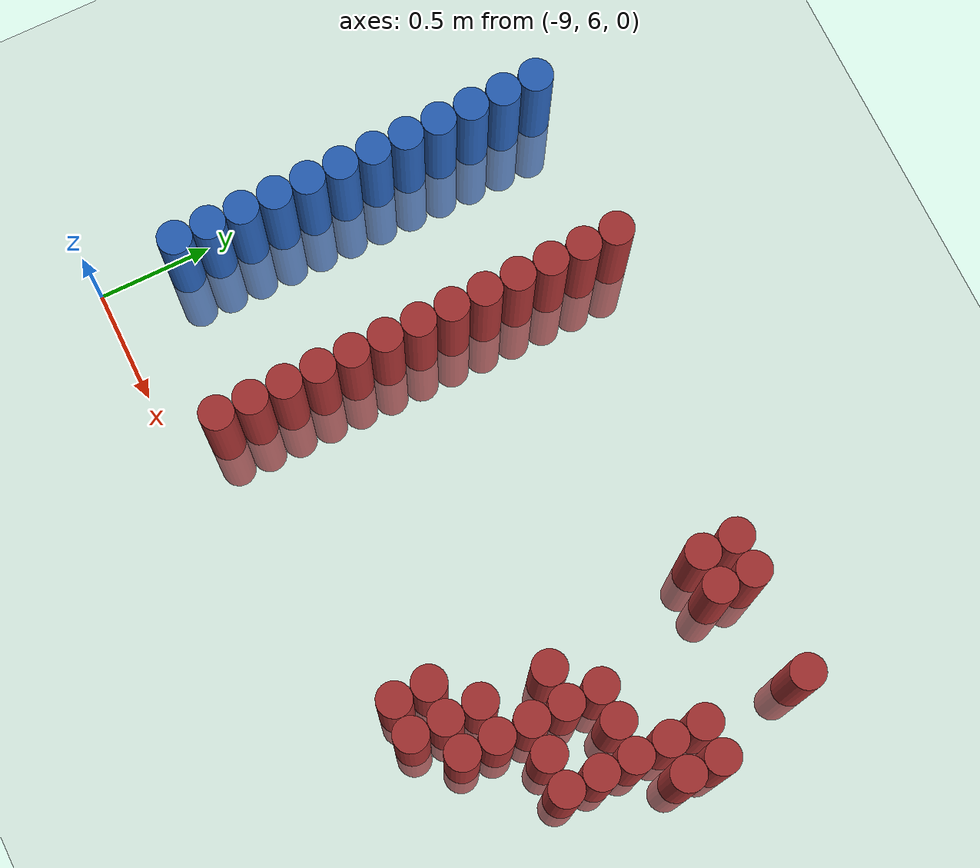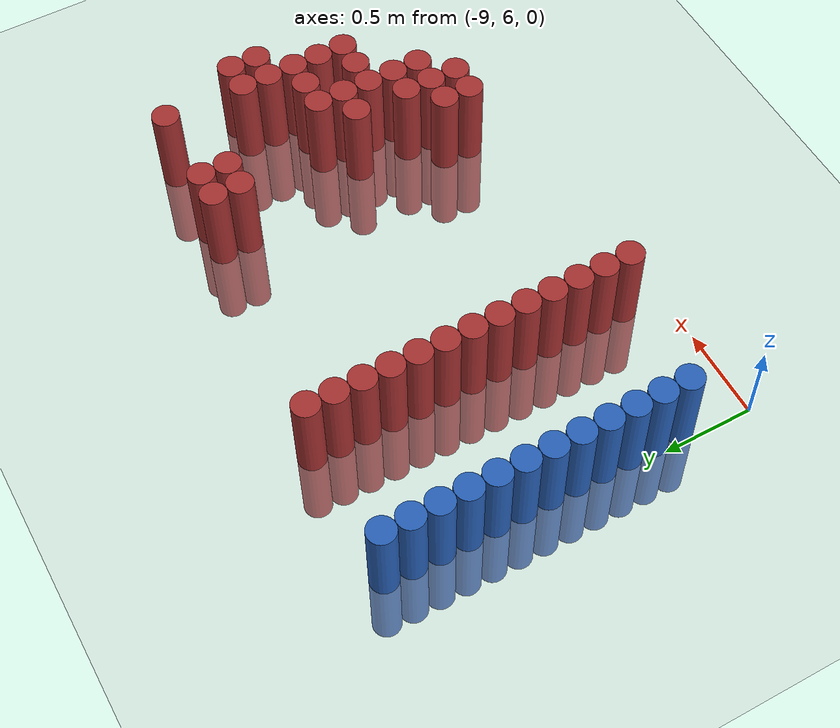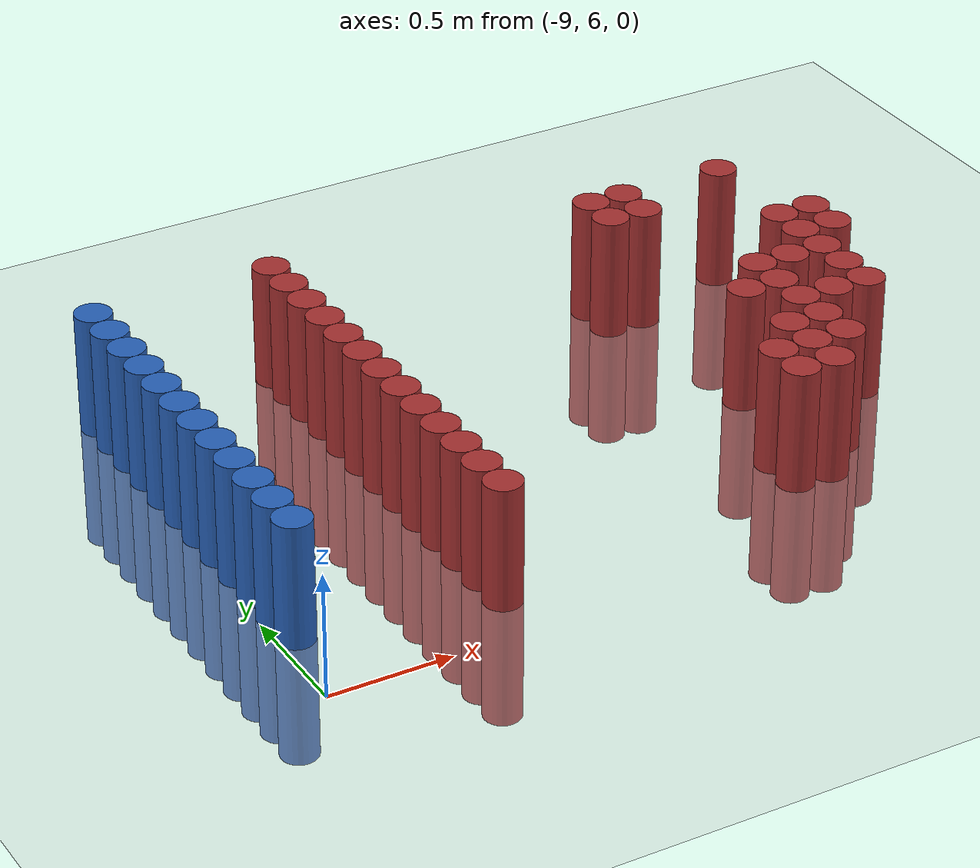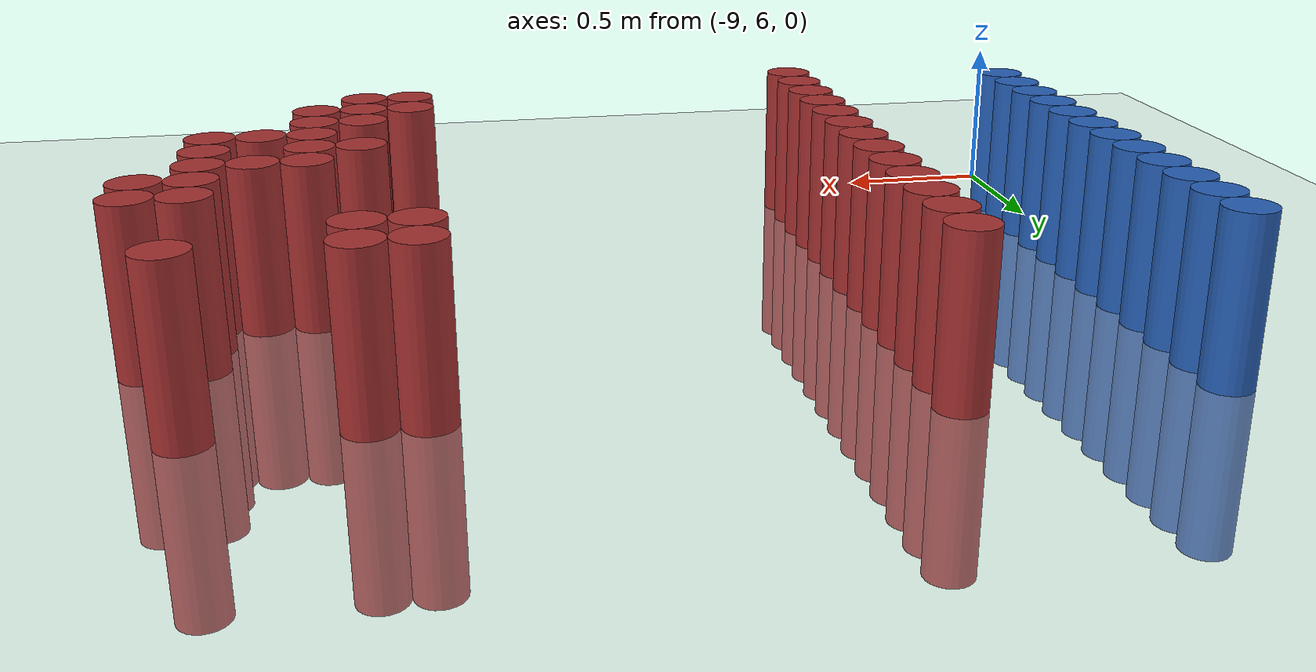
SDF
<sdf version="1.6">
 <world name="default">
  <model name="ground_plane">
   <static>1</static>
   <link name="link">
    <collision name="collision">
     <geometry><plane><normal>0 0 1</normal><size>100 100</size></plane></geometry>
     <surface><friction><ode><mu>100</mu><mu2>50</mu2></ode></friction></surface>
    </collision>
    <visual name="visual">
     <cast_shadows>0</cast_shadows>
     <geometry><plane><normal>0 0 1</normal><size>100 100</size></plane></geometry>
     <material>
      <script><uri>file://media/materials/scripts/gazebo.material</uri><name>Gazebo/Grey</name></script>
     </material>
    </visual>
   </link>
  </model>
  <model name="unit_cylinder_133">
   <static>1</static>
   <pose>-8.925000 6.375000 0.000000 0.000000 0.000000 0.000000</pose>
   <link name="link">
    <inertial>
     <mass>1</mass>
     <inertia><ixx>0.145833</ixx><ixy>0</ixy><ixz>0</ixz><iyy>0.145833</iyy><iyz>0</iyz><izz>0.125</izz></inertia>
    </inertial>
    <collision name="collision">
     <geometry><cylinder><radius>0.075000</radius><length>1</length></cylinder></geometry>
    </collision>
    <visual name="visual">
     <geometry><cylinder><radius>0.075000</radius><length>1</length></cylinder></geometry>
     <material>
      <ambient>0.152000 0.379000 0.720000 1</ambient>
      <diffuse>0.152000 0.379000 0.720000 1</diffuse>
     </material>
     <material>
      <script><name>Gazebo/Grey</name><uri>file://media/materials/scripts/gazebo.material</uri></script>
     </material>
    </visual>
   </link>
  </model>
  <model name="unit_cylinder_134">
   <static>1</static>
   <pose>-8.925000 6.525000 0.000000 0.000000 0.000000 0.000000</pose>
   <link name="link">
    <inertial>
     <mass>1</mass>
     <inertia><ixx>0.145833</ixx><ixy>0</ixy><ixz>0</ixz><iyy>0.145833</iyy><iyz>0</iyz><izz>0.125</izz></inertia>
    </inertial>
    <collision name="collision">
     <geometry><cylinder><radius>0.075000</radius><length>1</length></cylinder></geometry>
    </collision>
    <visual name="visual">
     <geometry><cylinder><radius>0.075000</radius><length>1</length></cylinder></geometry>
     <material>
      <ambient>0.152000 0.379000 0.720000 1</ambient>
      <diffuse>0.152000 0.379000 0.720000 1</diffuse>
     </material>
     <material>
      <script><name>Gazebo/Grey</name><uri>file://media/materials/scripts/gazebo.material</uri></script>
     </material>
    </visual>
   </link>
  </model>
  <model name="unit_cylinder_135">
   <static>1</static>
   <pose>-8.925000 6.675000 0.000000 0.000000 0.000000 0.000000</pose>
   <link name="link">
    <inertial>
     <mass>1</mass>
     <inertia><ixx>0.145833</ixx><ixy>0</ixy><ixz>0</ixz><iyy>0.145833</iyy><iyz>0</iyz><izz>0.125</izz></inertia>
    </inertial>
    <collision name="collision">
     <geometry><cylinder><radius>0.075000</radius><length>1</length></cylinder></geometry>
    </collision>
    <visual name="visual">
     <geometry><cylinder><radius>0.075000</radius><length>1</length></cylinder></geometry>
     <material>
      <ambient>0.152000 0.379000 0.720000 1</ambient>
      <diffuse>0.152000 0.379000 0.720000 1</diffuse>
     </material>
     <material>
      <script><name>Gazebo/Grey</name><uri>file://media/materials/scripts/gazebo.material</uri></script>
     </material>
    </visual>
   </link>
  </model>
  <model name="unit_cylinder_136">
   <static>1</static>
   <pose>-8.925000 6.825000 0.000000 0.000000 0.000000 0.000000</pose>
   <link name="link">
    <inertial>
     <mass>1</mass>
     <inertia><ixx>0.145833</ixx><ixy>0</ixy><ixz>0</ixz><iyy>0.145833</iyy><iyz>0</iyz><izz>0.125</izz></inertia>
    </inertial>
    <collision name="collision">
     <geometry><cylinder><radius>0.075000</radius><length>1</length></cylinder></geometry>
    </collision>
    <visual name="visual">
     <geometry><cylinder><radius>0.075000</radius><length>1</length></cylinder></geometry>
     <material>
      <ambient>0.152000 0.379000 0.720000 1</ambient>
      <diffuse>0.152000 0.379000 0.720000 1</diffuse>
     </material>
     <material>
      <script><name>Gazebo/Grey</name><uri>file://media/materials/scripts/gazebo.material</uri></script>
     </material>
    </visual>
   </link>
  </model>
  <model name="unit_cylinder_137">
   <static>1</static>
   <pose>-8.925000 6.975000 0.000000 0.000000 0.000000 0.000000</pose>
   <link name="link">
    <inertial>
     <mass>1</mass>
     <inertia><ixx>0.145833</ixx><ixy>0</ixy><ixz>0</ixz><iyy>0.145833</iyy><iyz>0</iyz><izz>0.125</izz></inertia>
    </inertial>
    <collision name="collision">
     <geometry><cylinder><radius>0.075000</radius><length>1</length></cylinder></geometry>
    </collision>
    <visual name="visual">
     <geometry><cylinder><radius>0.075000</radius><length>1</length></cylinder></geometry>
     <material>
      <ambient>0.152000 0.379000 0.720000 1</ambient>
      <diffuse>0.152000 0.379000 0.720000 1</diffuse>
     </material>
     <material>
      <script><name>Gazebo/Grey</name><uri>file://media/materials/scripts/gazebo.material</uri></script>
     </material>
    </visual>
   </link>
  </model>
  <model name="unit_cylinder_138">
   <static>1</static>
   <pose>-8.925000 7.125000 0.000000 0.000000 0.000000 0.000000</pose>
   <link name="link">
    <inertial>
     <mass>1</mass>
     <inertia><ixx>0.145833</ixx><ixy>0</ixy><ixz>0</ixz><iyy>0.145833</iyy><iyz>0</iyz><izz>0.125</izz></inertia>
    </inertial>
    <collision name="collision">
     <geometry><cylinder><radius>0.075000</radius><length>1</length></cylinder></geometry>
    </collision>
    <visual name="visual">
     <geometry><cylinder><radius>0.075000</radius><length>1</length></cylinder></geometry>
     <material>
      <ambient>0.152000 0.379000 0.720000 1</ambient>
      <diffuse>0.152000 0.379000 0.720000 1</diffuse>
     </material>
     <material>
      <script><name>Gazebo/Grey</name><uri>file://media/materials/scripts/gazebo.material</uri></script>
     </material>
    </visual>
   </link>
  </model>
  <model name="unit_cylinder_139">
   <static>1</static>
   <pose>-8.925000 7.275000 0.000000 0.000000 0.000000 0.000000</pose>
   <link name="link">
    <inertial>
     <mass>1</mass>
     <inertia><ixx>0.145833</ixx><ixy>0</ixy><ixz>0</ixz><iyy>0.145833</iyy><iyz>0</iyz><izz>0.125</izz></inertia>
    </inertial>
    <collision name="collision">
     <geometry><cylinder><radius>0.075000</radius><length>1</length></cylinder></geometry>
    </collision>
    <visual name="visual">
     <geometry><cylinder><radius>0.075000</radius><length>1</length></cylinder></geometry>
     <material>
      <ambient>0.152000 0.379000 0.720000 1</ambient>
      <diffuse>0.152000 0.379000 0.720000 1</diffuse>
     </material>
     <material>
      <script><name>Gazebo/Grey</name><uri>file://media/materials/scripts/gazebo.material</uri></script>
     </material>
    </visual>
   </link>
  </model>
  <model name="unit_cylinder_140">
   <static>1</static>
   <pose>-8.925000 7.425000 0.000000 0.000000 0.000000 0.000000</pose>
   <link name="link">
    <inertial>
     <mass>1</mass>
     <inertia><ixx>0.145833</ixx><ixy>0</ixy><ixz>0</ixz><iyy>0.145833</iyy><iyz>0</iyz><izz>0.125</izz></inertia>
    </inertial>
    <collision name="collision">
     <geometry><cylinder><radius>0.075000</radius><length>1</length></cylinder></geometry>
    </collision>
    <visual name="visual">
     <geometry><cylinder><radius>0.075000</radius><length>1</length></cylinder></geometry>
     <material>
      <ambient>0.152000 0.379000 0.720000 1</ambient>
      <diffuse>0.152000 0.379000 0.720000 1</diffuse>
     </material>
     <material>
      <script><name>Gazebo/Grey</name><uri>file://media/materials/scripts/gazebo.material</uri></script>
     </material>
    </visual>
   </link>
  </model>
  <model name="unit_cylinder_141">
   <static>1</static>
   <pose>-8.925000 7.575000 0.000000 0.000000 0.000000 0.000000</pose>
   <link name="link">
    <inertial>
     <mass>1</mass>
     <inertia><ixx>0.145833</ixx><ixy>0</ixy><ixz>0</ixz><iyy>0.145833</iyy><iyz>0</iyz><izz>0.125</izz></inertia>
    </inertial>
    <collision name="collision">
     <geometry><cylinder><radius>0.075000</radius><length>1</length></cylinder></geometry>
    </collision>
    <visual name="visual">
     <geometry><cylinder><radius>0.075000</radius><length>1</length></cylinder></geometry>
     <material>
      <ambient>0.152000 0.379000 0.720000 1</ambient>
      <diffuse>0.152000 0.379000 0.720000 1</diffuse>
     </material>
     <material>
      <script><name>Gazebo/Grey</name><uri>file://media/materials/scripts/gazebo.material</uri></script>
     </material>
    </visual>
   </link>
  </model>
  <model name="unit_cylinder_142">
   <static>1</static>
   <pose>-8.925000 7.725000 0.000000 0.000000 0.000000 0.000000</pose>
   <link name="link">
    <inertial>
     <mass>1</mass>
     <inertia><ixx>0.145833</ixx><ixy>0</ixy><ixz>0</ixz><iyy>0.145833</iyy><iyz>0</iyz><izz>0.125</izz></inertia>
    </inertial>
    <collision name="collision">
     <geometry><cylinder><radius>0.075000</radius><length>1</length></cylinder></geometry>
    </collision>
    <visual name="visual">
     <geometry><cylinder><radius>0.075000</radius><length>1</length></cylinder></geometry>
     <material>
      <ambient>0.152000 0.379000 0.720000 1</ambient>
      <diffuse>0.152000 0.379000 0.720000 1</diffuse>
     </material>
     <material>
      <script><name>Gazebo/Grey</name><uri>file://media/materials/scripts/gazebo.material</uri></script>
     </material>
    </visual>
   </link>
  </model>
  <model name="unit_cylinder_143">
   <static>1</static>
   <pose>-8.925000 7.875000 0.000000 0.000000 0.000000 0.000000</pose>
   <link name="link">
    <inertial>
     <mass>1</mass>
     <inertia><ixx>0.145833</ixx><ixy>0</ixy><ixz>0</ixz><iyy>0.145833</iyy><iyz>0</iyz><izz>0.125</izz></inertia>
    </inertial>
    <collision name="collision">
     <geometry><cylinder><radius>0.075000</radius><length>1</length></cylinder></geometry>
    </collision>
    <visual name="visual">
     <geometry><cylinder><radius>0.075000</radius><length>1</length></cylinder></geometry>
     <material>
      <ambient>0.152000 0.379000 0.720000 1</ambient>
      <diffuse>0.152000 0.379000 0.720000 1</diffuse>
     </material>
     <material>
      <script><name>Gazebo/Grey</name><uri>file://media/materials/scripts/gazebo.material</uri></script>
     </material>
    </visual>
   </link>
  </model>
  <model name="unit_cylinder_144">
   <static>1</static>
   <pose>-8.925000 8.025000 0.000000 0.000000 0.000000 0.000000</pose>
   <link name="link">
    <inertial>
     <mass>1</mass>
     <inertia><ixx>0.145833</ixx><ixy>0</ixy><ixz>0</ixz><iyy>0.145833</iyy><iyz>0</iyz><izz>0.125</izz></inertia>
    </inertial>
    <collision name="collision">
     <geometry><cylinder><radius>0.075000</radius><length>1</length></cylinder></geometry>
    </collision>
    <visual name="visual">
     <geometry><cylinder><radius>0.075000</radius><length>1</length></cylinder></geometry>
     <material>
      <ambient>0.152000 0.379000 0.720000 1</ambient>
      <diffuse>0.152000 0.379000 0.720000 1</diffuse>
     </material>
     <material>
      <script><name>Gazebo/Grey</name><uri>file://media/materials/scripts/gazebo.material</uri></script>
     </material>
    </visual>
   </link>
  </model>
  <model name="unit_cylinder_170">
   <static>1</static>
   <pose>-8.175000 6.225000 0.000000 0.000000 0.000000 0.000000</pose>
   <link name="link">
    <inertial>
     <mass>1</mass>
     <inertia><ixx>0.145833</ixx><ixy>0</ixy><ixz>0</ixz><iyy>0.145833</iyy><iyz>0</iyz><izz>0.125</izz></inertia>
    </inertial>
    <collision name="collision">
     <geometry><cylinder><radius>0.075000</radius><length>1</length></cylinder></geometry>
    </collision>
    <visual name="visual">
     <geometry><cylinder><radius>0.075000</radius><length>1</length></cylinder></geometry>
     <material>
      <ambient>0.648000 0.192000 0.192000 1</ambient>
      <diffuse>0.648000 0.192000 0.192000 1</diffuse>
     </material>
     <material>
      <script><name>Gazebo/Grey</name><uri>file://media/materials/scripts/gazebo.material</uri></script>
     </material>
    </visual>
   </link>
  </model>
  <model name="unit_cylinder_171">
   <static>1</static>
   <pose>-8.175000 6.375000 0.000000 0.000000 0.000000 0.000000</pose>
   <link name="link">
    <inertial>
     <mass>1</mass>
     <inertia><ixx>0.145833</ixx><ixy>0</ixy><ixz>0</ixz><iyy>0.145833</iyy><iyz>0</iyz><izz>0.125</izz></inertia>
    </inertial>
    <collision name="collision">
     <geometry><cylinder><radius>0.075000</radius><length>1</length></cylinder></geometry>
    </collision>
    <visual name="visual">
     <geometry><cylinder><radius>0.075000</radius><length>1</length></cylinder></geometry>
     <material>
      <ambient>0.648000 0.192000 0.192000 1</ambient>
      <diffuse>0.648000 0.192000 0.192000 1</diffuse>
     </material>
     <material>
      <script><name>Gazebo/Grey</name><uri>file://media/materials/scripts/gazebo.material</uri></script>
     </material>
    </visual>
   </link>
  </model>
  <model name="unit_cylinder_172">
   <static>1</static>
   <pose>-8.175000 6.525000 0.000000 0.000000 0.000000 0.000000</pose>
   <link name="link">
    <inertial>
     <mass>1</mass>
     <inertia><ixx>0.145833</ixx><ixy>0</ixy><ixz>0</ixz><iyy>0.145833</iyy><iyz>0</iyz><izz>0.125</izz></inertia>
    </inertial>
    <collision name="collision">
     <geometry><cylinder><radius>0.075000</radius><length>1</length></cylinder></geometry>
    </collision>
    <visual name="visual">
     <geometry><cylinder><radius>0.075000</radius><length>1</length></cylinder></geometry>
     <material>
      <ambient>0.648000 0.192000 0.192000 1</ambient>
      <diffuse>0.648000 0.192000 0.192000 1</diffuse>
     </material>
     <material>
      <script><name>Gazebo/Grey</name><uri>file://media/materials/scripts/gazebo.material</uri></script>
     </material>
    </visual>
   </link>
  </model>
  <model name="unit_cylinder_173">
   <static>1</static>
   <pose>-8.175000 6.675000 0.000000 0.000000 0.000000 0.000000</pose>
   <link name="link">
    <inertial>
     <mass>1</mass>
     <inertia><ixx>0.145833</ixx><ixy>0</ixy><ixz>0</ixz><iyy>0.145833</iyy><iyz>0</iyz><izz>0.125</izz></inertia>
    </inertial>
    <collision name="collision">
     <geometry><cylinder><radius>0.075000</radius><length>1</length></cylinder></geometry>
    </collision>
    <visual name="visual">
     <geometry><cylinder><radius>0.075000</radius><length>1</length></cylinder></geometry>
     <material>
      <ambient>0.648000 0.192000 0.192000 1</ambient>
      <diffuse>0.648000 0.192000 0.192000 1</diffuse>
     </material>
     <material>
      <script><name>Gazebo/Grey</name><uri>file://media/materials/scripts/gazebo.material</uri></script>
     </material>
    </visual>
   </link>
  </model>
  <model name="unit_cylinder_174">
   <static>1</static>
   <pose>-8.175000 6.825000 0.000000 0.000000 0.000000 0.000000</pose>
   <link name="link">
    <inertial>
     <mass>1</mass>
     <inertia><ixx>0.145833</ixx><ixy>0</ixy><ixz>0</ixz><iyy>0.145833</iyy><iyz>0</iyz><izz>0.125</izz></inertia>
    </inertial>
    <collision name="collision">
     <geometry><cylinder><radius>0.075000</radius><length>1</length></cylinder></geometry>
    </collision>
    <visual name="visual">
     <geometry><cylinder><radius>0.075000</radius><length>1</length></cylinder></geometry>
     <material>
      <ambient>0.648000 0.192000 0.192000 1</ambient>
      <diffuse>0.648000 0.192000 0.192000 1</diffuse>
     </material>
     <material>
      <script><name>Gazebo/Grey</name><uri>file://media/materials/scripts/gazebo.material</uri></script>
     </material>
    </visual>
   </link>
  </model>
  <model name="unit_cylinder_175">
   <static>1</static>
   <pose>-8.175000 6.975000 0.000000 0.000000 0.000000 0.000000</pose>
   <link name="link">
    <inertial>
     <mass>1</mass>
     <inertia><ixx>0.145833</ixx><ixy>0</ixy><ixz>0</ixz><iyy>0.145833</iyy><iyz>0</iyz><izz>0.125</izz></inertia>
    </inertial>
    <collision name="collision">
     <geometry><cylinder><radius>0.075000</radius><length>1</length></cylinder></geometry>
    </collision>
    <visual name="visual">
     <geometry><cylinder><radius>0.075000</radius><length>1</length></cylinder></geometry>
     <material>
      <ambient>0.648000 0.192000 0.192000 1</ambient>
      <diffuse>0.648000 0.192000 0.192000 1</diffuse>
     </material>
     <material>
      <script><name>Gazebo/Grey</name><uri>file://media/materials/scripts/gazebo.material</uri></script>
     </material>
    </visual>
   </link>
  </model>
  <model name="unit_cylinder_176">
   <static>1</static>
   <pose>-8.175000 7.125000 0.000000 0.000000 0.000000 0.000000</pose>
   <link name="link">
    <inertial>
     <mass>1</mass>
     <inertia><ixx>0.145833</ixx><ixy>0</ixy><ixz>0</ixz><iyy>0.145833</iyy><iyz>0</iyz><izz>0.125</izz></inertia>
    </inertial>
    <collision name="collision">
     <geometry><cylinder><radius>0.075000</radius><length>1</length></cylinder></geometry>
    </collision>
    <visual name="visual">
     <geometry><cylinder><radius>0.075000</radius><length>1</length></cylinder></geometry>
     <material>
      <ambient>0.648000 0.192000 0.192000 1</ambient>
      <diffuse>0.648000 0.192000 0.192000 1</diffuse>
     </material>
     <material>
      <script><name>Gazebo/Grey</name><uri>file://media/materials/scripts/gazebo.material</uri></script>
     </material>
    </visual>
   </link>
  </model>
  <model name="unit_cylinder_177">
   <static>1</static>
   <pose>-8.175000 7.275000 0.000000 0.000000 0.000000 0.000000</pose>
   <link name="link">
    <inertial>
     <mass>1</mass>
     <inertia><ixx>0.145833</ixx><ixy>0</ixy><ixz>0</ixz><iyy>0.145833</iyy><iyz>0</iyz><izz>0.125</izz></inertia>
    </inertial>
    <collision name="collision">
     <geometry><cylinder><radius>0.075000</radius><length>1</length></cylinder></geometry>
    </collision>
    <visual name="visual">
     <geometry><cylinder><radius>0.075000</radius><length>1</length></cylinder></geometry>
     <material>
      <ambient>0.648000 0.192000 0.192000 1</ambient>
      <diffuse>0.648000 0.192000 0.192000 1</diffuse>
     </material>
     <material>
      <script><name>Gazebo/Grey</name><uri>file://media/materials/scripts/gazebo.material</uri></script>
     </material>
    </visual>
   </link>
  </model>
  <model name="unit_cylinder_178">
   <static>1</static>
   <pose>-8.175000 7.425000 0.000000 0.000000 0.000000 0.000000</pose>
   <link name="link">
    <inertial>
     <mass>1</mass>
     <inertia><ixx>0.145833</ixx><ixy>0</ixy><ixz>0</ixz><iyy>0.145833</iyy><iyz>0</iyz><izz>0.125</izz></inertia>
    </inertial>
    <collision name="collision">
     <geometry><cylinder><radius>0.075000</radius><length>1</length></cylinder></geometry>
    </collision>
    <visual name="visual">
     <geometry><cylinder><radius>0.075000</radius><length>1</length></cylinder></geometry>
     <material>
      <ambient>0.648000 0.192000 0.192000 1</ambient>
      <diffuse>0.648000 0.192000 0.192000 1</diffuse>
     </material>
     <material>
      <script><name>Gazebo/Grey</name><uri>file://media/materials/scripts/gazebo.material</uri></script>
     </material>
    </visual>
   </link>
  </model>
  <model name="unit_cylinder_179">
   <static>1</static>
   <pose>-8.175000 7.575000 0.000000 0.000000 0.000000 0.000000</pose>
   <link name="link">
    <inertial>
     <mass>1</mass>
     <inertia><ixx>0.145833</ixx><ixy>0</ixy><ixz>0</ixz><iyy>0.145833</iyy><iyz>0</iyz><izz>0.125</izz></inertia>
    </inertial>
    <collision name="collision">
     <geometry><cylinder><radius>0.075000</radius><length>1</length></cylinder></geometry>
    </collision>
    <visual name="visual">
     <geometry><cylinder><radius>0.075000</radius><length>1</length></cylinder></geometry>
     <material>
      <ambient>0.648000 0.192000 0.192000 1</ambient>
      <diffuse>0.648000 0.192000 0.192000 1</diffuse>
     </material>
     <material>
      <script><name>Gazebo/Grey</name><uri>file://media/materials/scripts/gazebo.material</uri></script>
     </material>
    </visual>
   </link>
  </model>
  <model name="unit_cylinder_180">
   <static>1</static>
   <pose>-8.175000 7.725000 0.000000 0.000000 0.000000 0.000000</pose>
   <link name="link">
    <inertial>
     <mass>1</mass>
     <inertia><ixx>0.145833</ixx><ixy>0</ixy><ixz>0</ixz><iyy>0.145833</iyy><iyz>0</iyz><izz>0.125</izz></inertia>
    </inertial>
    <collision name="collision">
     <geometry><cylinder><radius>0.075000</radius><length>1</length></cylinder></geometry>
    </collision>
    <visual name="visual">
     <geometry><cylinder><radius>0.075000</radius><length>1</length></cylinder></geometry>
     <material>
      <ambient>0.648000 0.192000 0.192000 1</ambient>
      <diffuse>0.648000 0.192000 0.192000 1</diffuse>
     </material>
     <material>
      <script><name>Gazebo/Grey</name><uri>file://media/materials/scripts/gazebo.material</uri></script>
     </material>
    </visual>
   </link>
  </model>
  <model name="unit_cylinder_181">
   <static>1</static>
   <pose>-8.175000 7.875000 0.000000 0.000000 0.000000 0.000000</pose>
   <link name="link">
    <inertial>
     <mass>1</mass>
     <inertia><ixx>0.145833</ixx><ixy>0</ixy><ixz>0</ixz><iyy>0.145833</iyy><iyz>0</iyz><izz>0.125</izz></inertia>
    </inertial>
    <collision name="collision">
     <geometry><cylinder><radius>0.075000</radius><length>1</length></cylinder></geometry>
    </collision>
    <visual name="visual">
     <geometry><cylinder><radius>0.075000</radius><length>1</length></cylinder></geometry>
     <material>
      <ambient>0.648000 0.192000 0.192000 1</ambient>
      <diffuse>0.648000 0.192000 0.192000 1</diffuse>
     </material>
     <material>
      <script><name>Gazebo/Grey</name><uri>file://media/materials/scripts/gazebo.material</uri></script>
     </material>
    </visual>
   </link>
  </model>
  <model name="unit_cylinder_182">
   <static>1</static>
   <pose>-8.175000 8.025000 0.000000 0.000000 0.000000 0.000000</pose>
   <link name="link">
    <inertial>
     <mass>1</mass>
     <inertia><ixx>0.145833</ixx><ixy>0</ixy><ixz>0</ixz><iyy>0.145833</iyy><iyz>0</iyz><izz>0.125</izz></inertia>
    </inertial>
    <collision name="collision">
     <geometry><cylinder><radius>0.075000</radius><length>1</length></cylinder></geometry>
    </collision>
    <visual name="visual">
     <geometry><cylinder><radius>0.075000</radius><length>1</length></cylinder></geometry>
     <material>
      <ambient>0.648000 0.192000 0.192000 1</ambient>
      <diffuse>0.648000 0.192000 0.192000 1</diffuse>
     </material>
     <material>
      <script><name>Gazebo/Grey</name><uri>file://media/materials/scripts/gazebo.material</uri></script>
     </material>
    </visual>
   </link>
  </model>
  <model name="unit_cylinder_194">
   <static>1</static>
   <pose>-6.825000 6.375000 0.000000 0.000000 0.000000 0.000000</pose>
   <link name="link">
    <inertial>
     <mass>1</mass>
     <inertia><ixx>0.145833</ixx><ixy>0</ixy><ixz>0</ixz><iyy>0.145833</iyy><iyz>0</iyz><izz>0.125</izz></inertia>
    </inertial>
    <collision name="collision">
     <geometry><cylinder><radius>0.075000</radius><length>1</length></cylinder></geometry>
    </collision>
    <visual name="visual">
     <geometry><cylinder><radius>0.075000</radius><length>1</length></cylinder></geometry>
     <material>
      <ambient>0.648000 0.192000 0.192000 1</ambient>
      <diffuse>0.648000 0.192000 0.192000 1</diffuse>
     </material>
     <material>
      <script><name>Gazebo/Grey</name><uri>file://media/materials/scripts/gazebo.material</uri></script>
     </material>
    </visual>
   </link>
  </model>
  <model name="unit_cylinder_195">
   <static>1</static>
   <pose>-6.825000 6.525000 0.000000 0.000000 0.000000 0.000000</pose>
   <link name="link">
    <inertial>
     <mass>1</mass>
     <inertia><ixx>0.145833</ixx><ixy>0</ixy><ixz>0</ixz><iyy>0.145833</iyy><iyz>0</iyz><izz>0.125</izz></inertia>
    </inertial>
    <collision name="collision">
     <geometry><cylinder><radius>0.075000</radius><length>1</length></cylinder></geometry>
    </collision>
    <visual name="visual">
     <geometry><cylinder><radius>0.075000</radius><length>1</length></cylinder></geometry>
     <material>
      <ambient>0.648000 0.192000 0.192000 1</ambient>
      <diffuse>0.648000 0.192000 0.192000 1</diffuse>
     </material>
     <material>
      <script><name>Gazebo/Grey</name><uri>file://media/materials/scripts/gazebo.material</uri></script>
     </material>
    </visual>
   </link>
  </model>
  <model name="unit_cylinder_196">
   <static>1</static>
   <pose>-6.825000 7.725000 0.000000 0.000000 0.000000 0.000000</pose>
   <link name="link">
    <inertial>
     <mass>1</mass>
     <inertia><ixx>0.145833</ixx><ixy>0</ixy><ixz>0</ixz><iyy>0.145833</iyy><iyz>0</iyz><izz>0.125</izz></inertia>
    </inertial>
    <collision name="collision">
     <geometry><cylinder><radius>0.075000</radius><length>1</length></cylinder></geometry>
    </collision>
    <visual name="visual">
     <geometry><cylinder><radius>0.075000</radius><length>1</length></cylinder></geometry>
     <material>
      <ambient>0.648000 0.192000 0.192000 1</ambient>
      <diffuse>0.648000 0.192000 0.192000 1</diffuse>
     </material>
     <material>
      <script><name>Gazebo/Grey</name><uri>file://media/materials/scripts/gazebo.material</uri></script>
     </material>
    </visual>
   </link>
  </model>
  <model name="unit_cylinder_197">
   <static>1</static>
   <pose>-6.825000 7.875000 0.000000 0.000000 0.000000 0.000000</pose>
   <link name="link">
    <inertial>
     <mass>1</mass>
     <inertia><ixx>0.145833</ixx><ixy>0</ixy><ixz>0</ixz><iyy>0.145833</iyy><iyz>0</iyz><izz>0.125</izz></inertia>
    </inertial>
    <collision name="collision">
     <geometry><cylinder><radius>0.075000</radius><length>1</length></cylinder></geometry>
    </collision>
    <visual name="visual">
     <geometry><cylinder><radius>0.075000</radius><length>1</length></cylinder></geometry>
     <material>
      <ambient>0.648000 0.192000 0.192000 1</ambient>
      <diffuse>0.648000 0.192000 0.192000 1</diffuse>
     </material>
     <material>
      <script><name>Gazebo/Grey</name><uri>file://media/materials/scripts/gazebo.material</uri></script>
     </material>
    </visual>
   </link>
  </model>
  <model name="unit_cylinder_202">
   <static>1</static>
   <pose>-6.675000 6.375000 0.000000 0.000000 0.000000 0.000000</pose>
   <link name="link">
    <inertial>
     <mass>1</mass>
     <inertia><ixx>0.145833</ixx><ixy>0</ixy><ixz>0</ixz><iyy>0.145833</iyy><iyz>0</iyz><izz>0.125</izz></inertia>
    </inertial>
    <collision name="collision">
     <geometry><cylinder><radius>0.075000</radius><length>1</length></cylinder></geometry>
    </collision>
    <visual name="visual">
     <geometry><cylinder><radius>0.075000</radius><length>1</length></cylinder></geometry>
     <material>
      <ambient>0.648000 0.192000 0.192000 1</ambient>
      <diffuse>0.648000 0.192000 0.192000 1</diffuse>
     </material>
     <material>
      <script><name>Gazebo/Grey</name><uri>file://media/materials/scripts/gazebo.material</uri></script>
     </material>
    </visual>
   </link>
  </model>
  <model name="unit_cylinder_203">
   <static>1</static>
   <pose>-6.675000 6.525000 0.000000 0.000000 0.000000 0.000000</pose>
   <link name="link">
    <inertial>
     <mass>1</mass>
     <inertia><ixx>0.145833</ixx><ixy>0</ixy><ixz>0</ixz><iyy>0.145833</iyy><iyz>0</iyz><izz>0.125</izz></inertia>
    </inertial>
    <collision name="collision">
     <geometry><cylinder><radius>0.075000</radius><length>1</length></cylinder></geometry>
    </collision>
    <visual name="visual">
     <geometry><cylinder><radius>0.075000</radius><length>1</length></cylinder></geometry>
     <material>
      <ambient>0.648000 0.192000 0.192000 1</ambient>
      <diffuse>0.648000 0.192000 0.192000 1</diffuse>
     </material>
     <material>
      <script><name>Gazebo/Grey</name><uri>file://media/materials/scripts/gazebo.material</uri></script>
     </material>
    </visual>
   </link>
  </model>
  <model name="unit_cylinder_204">
   <static>1</static>
   <pose>-6.675000 6.675000 0.000000 0.000000 0.000000 0.000000</pose>
   <link name="link">
    <inertial>
     <mass>1</mass>
     <inertia><ixx>0.145833</ixx><ixy>0</ixy><ixz>0</ixz><iyy>0.145833</iyy><iyz>0</iyz><izz>0.125</izz></inertia>
    </inertial>
    <collision name="collision">
     <geometry><cylinder><radius>0.075000</radius><length>1</length></cylinder></geometry>
    </collision>
    <visual name="visual">
     <geometry><cylinder><radius>0.075000</radius><length>1</length></cylinder></geometry>
     <material>
      <ambient>0.648000 0.192000 0.192000 1</ambient>
      <diffuse>0.648000 0.192000 0.192000 1</diffuse>
     </material>
     <material>
      <script><name>Gazebo/Grey</name><uri>file://media/materials/scripts/gazebo.material</uri></script>
     </material>
    </visual>
   </link>
  </model>
  <model name="unit_cylinder_205">
   <static>1</static>
   <pose>-6.675000 6.975000 0.000000 0.000000 0.000000 0.000000</pose>
   <link name="link">
    <inertial>
     <mass>1</mass>
     <inertia><ixx>0.145833</ixx><ixy>0</ixy><ixz>0</ixz><iyy>0.145833</iyy><iyz>0</iyz><izz>0.125</izz></inertia>
    </inertial>
    <collision name="collision">
     <geometry><cylinder><radius>0.075000</radius><length>1</length></cylinder></geometry>
    </collision>
    <visual name="visual">
     <geometry><cylinder><radius>0.075000</radius><length>1</length></cylinder></geometry>
     <material>
      <ambient>0.648000 0.192000 0.192000 1</ambient>
      <diffuse>0.648000 0.192000 0.192000 1</diffuse>
     </material>
     <material>
      <script><name>Gazebo/Grey</name><uri>file://media/materials/scripts/gazebo.material</uri></script>
     </material>
    </visual>
   </link>
  </model>
  <model name="unit_cylinder_206">
   <static>1</static>
   <pose>-6.675000 7.725000 0.000000 0.000000 0.000000 0.000000</pose>
   <link name="link">
    <inertial>
     <mass>1</mass>
     <inertia><ixx>0.145833</ixx><ixy>0</ixy><ixz>0</ixz><iyy>0.145833</iyy><iyz>0</iyz><izz>0.125</izz></inertia>
    </inertial>
    <collision name="collision">
     <geometry><cylinder><radius>0.075000</radius><length>1</length></cylinder></geometry>
    </collision>
    <visual name="visual">
     <geometry><cylinder><radius>0.075000</radius><length>1</length></cylinder></geometry>
     <material>
      <ambient>0.648000 0.192000 0.192000 1</ambient>
      <diffuse>0.648000 0.192000 0.192000 1</diffuse>
     </material>
     <material>
      <script><name>Gazebo/Grey</name><uri>file://media/materials/scripts/gazebo.material</uri></script>
     </material>
    </visual>
   </link>
  </model>
  <model name="unit_cylinder_207">
   <static>1</static>
   <pose>-6.675000 7.875000 0.000000 0.000000 0.000000 0.000000</pose>
   <link name="link">
    <inertial>
     <mass>1</mass>
     <inertia><ixx>0.145833</ixx><ixy>0</ixy><ixz>0</ixz><iyy>0.145833</iyy><iyz>0</iyz><izz>0.125</izz></inertia>
    </inertial>
    <collision name="collision">
     <geometry><cylinder><radius>0.075000</radius><length>1</length></cylinder></geometry>
    </collision>
    <visual name="visual">
     <geometry><cylinder><radius>0.075000</radius><length>1</length></cylinder></geometry>
     <material>
      <ambient>0.648000 0.192000 0.192000 1</ambient>
      <diffuse>0.648000 0.192000 0.192000 1</diffuse>
     </material>
     <material>
      <script><name>Gazebo/Grey</name><uri>file://media/materials/scripts/gazebo.material</uri></script>
     </material>
    </visual>
   </link>
  </model>
  <model name="unit_cylinder_217">
   <static>1</static>
   <pose>-6.525000 6.525000 0.000000 0.000000 0.000000 0.000000</pose>
   <link name="link">
    <inertial>
     <mass>1</mass>
     <inertia><ixx>0.145833</ixx><ixy>0</ixy><ixz>0</ixz><iyy>0.145833</iyy><iyz>0</iyz><izz>0.125</izz></inertia>
    </inertial>
    <collision name="collision">
     <geometry><cylinder><radius>0.075000</radius><length>1</length></cylinder></geometry>
    </collision>
    <visual name="visual">
     <geometry><cylinder><radius>0.075000</radius><length>1</length></cylinder></geometry>
     <material>
      <ambient>0.648000 0.192000 0.192000 1</ambient>
      <diffuse>0.648000 0.192000 0.192000 1</diffuse>
     </material>
     <material>
      <script><name>Gazebo/Grey</name><uri>file://media/materials/scripts/gazebo.material</uri></script>
     </material>
    </visual>
   </link>
  </model>
  <model name="unit_cylinder_218">
   <static>1</static>
   <pose>-6.525000 6.675000 0.000000 0.000000 0.000000 0.000000</pose>
   <link name="link">
    <inertial>
     <mass>1</mass>
     <inertia><ixx>0.145833</ixx><ixy>0</ixy><ixz>0</ixz><iyy>0.145833</iyy><iyz>0</iyz><izz>0.125</izz></inertia>
    </inertial>
    <collision name="collision">
     <geometry><cylinder><radius>0.075000</radius><length>1</length></cylinder></geometry>
    </collision>
    <visual name="visual">
     <geometry><cylinder><radius>0.075000</radius><length>1</length></cylinder></geometry>
     <material>
      <ambient>0.648000 0.192000 0.192000 1</ambient>
      <diffuse>0.648000 0.192000 0.192000 1</diffuse>
     </material>
     <material>
      <script><name>Gazebo/Grey</name><uri>file://media/materials/scripts/gazebo.material</uri></script>
     </material>
    </visual>
   </link>
  </model>
  <model name="unit_cylinder_219">
   <static>1</static>
   <pose>-6.525000 6.825000 0.000000 0.000000 0.000000 0.000000</pose>
   <link name="link">
    <inertial>
     <mass>1</mass>
     <inertia><ixx>0.145833</ixx><ixy>0</ixy><ixz>0</ixz><iyy>0.145833</iyy><iyz>0</iyz><izz>0.125</izz></inertia>
    </inertial>
    <collision name="collision">
     <geometry><cylinder><radius>0.075000</radius><length>1</length></cylinder></geometry>
    </collision>
    <visual name="visual">
     <geometry><cylinder><radius>0.075000</radius><length>1</length></cylinder></geometry>
     <material>
      <ambient>0.648000 0.192000 0.192000 1</ambient>
      <diffuse>0.648000 0.192000 0.192000 1</diffuse>
     </material>
     <material>
      <script><name>Gazebo/Grey</name><uri>file://media/materials/scripts/gazebo.material</uri></script>
     </material>
    </visual>
   </link>
  </model>
  <model name="unit_cylinder_220">
   <static>1</static>
   <pose>-6.525000 6.975000 0.000000 0.000000 0.000000 0.000000</pose>
   <link name="link">
    <inertial>
     <mass>1</mass>
     <inertia><ixx>0.145833</ixx><ixy>0</ixy><ixz>0</ixz><iyy>0.145833</iyy><iyz>0</iyz><izz>0.125</izz></inertia>
    </inertial>
    <collision name="collision">
     <geometry><cylinder><radius>0.075000</radius><length>1</length></cylinder></geometry>
    </collision>
    <visual name="visual">
     <geometry><cylinder><radius>0.075000</radius><length>1</length></cylinder></geometry>
     <material>
      <ambient>0.648000 0.192000 0.192000 1</ambient>
      <diffuse>0.648000 0.192000 0.192000 1</diffuse>
     </material>
     <material>
      <script><name>Gazebo/Grey</name><uri>file://media/materials/scripts/gazebo.material</uri></script>
     </material>
    </visual>
   </link>
  </model>
  <model name="unit_cylinder_221">
   <static>1</static>
   <pose>-6.525000 7.125000 0.000000 0.000000 0.000000 0.000000</pose>
   <link name="link">
    <inertial>
     <mass>1</mass>
     <inertia><ixx>0.145833</ixx><ixy>0</ixy><ixz>0</ixz><iyy>0.145833</iyy><iyz>0</iyz><izz>0.125</izz></inertia>
    </inertial>
    <collision name="collision">
     <geometry><cylinder><radius>0.075000</radius><length>1</length></cylinder></geometry>
    </collision>
    <visual name="visual">
     <geometry><cylinder><radius>0.075000</radius><length>1</length></cylinder></geometry>
     <material>
      <ambient>0.648000 0.192000 0.192000 1</ambient>
      <diffuse>0.648000 0.192000 0.192000 1</diffuse>
     </material>
     <material>
      <script><name>Gazebo/Grey</name><uri>file://media/materials/scripts/gazebo.material</uri></script>
     </material>
    </visual>
   </link>
  </model>
  <model name="unit_cylinder_232">
   <static>1</static>
   <pose>-6.375000 6.825000 0.000000 0.000000 0.000000 0.000000</pose>
   <link name="link">
    <inertial>
     <mass>1</mass>
     <inertia><ixx>0.145833</ixx><ixy>0</ixy><ixz>0</ixz><iyy>0.145833</iyy><iyz>0</iyz><izz>0.125</izz></inertia>
    </inertial>
    <collision name="collision">
     <geometry><cylinder><radius>0.075000</radius><length>1</length></cylinder></geometry>
    </collision>
    <visual name="visual">
     <geometry><cylinder><radius>0.075000</radius><length>1</length></cylinder></geometry>
     <material>
      <ambient>0.648000 0.192000 0.192000 1</ambient>
      <diffuse>0.648000 0.192000 0.192000 1</diffuse>
     </material>
     <material>
      <script><name>Gazebo/Grey</name><uri>file://media/materials/scripts/gazebo.material</uri></script>
     </material>
    </visual>
   </link>
  </model>
  <model name="unit_cylinder_233">
   <static>1</static>
   <pose>-6.375000 7.125000 0.000000 0.000000 0.000000 0.000000</pose>
   <link name="link">
    <inertial>
     <mass>1</mass>
     <inertia><ixx>0.145833</ixx><ixy>0</ixy><ixz>0</ixz><iyy>0.145833</iyy><iyz>0</iyz><izz>0.125</izz></inertia>
    </inertial>
    <collision name="collision">
     <geometry><cylinder><radius>0.075000</radius><length>1</length></cylinder></geometry>
    </collision>
    <visual name="visual">
     <geometry><cylinder><radius>0.075000</radius><length>1</length></cylinder></geometry>
     <material>
      <ambient>0.648000 0.192000 0.192000 1</ambient>
      <diffuse>0.648000 0.192000 0.192000 1</diffuse>
     </material>
     <material>
      <script><name>Gazebo/Grey</name><uri>file://media/materials/scripts/gazebo.material</uri></script>
     </material>
    </visual>
   </link>
  </model>
  <model name="unit_cylinder_244">
   <static>1</static>
   <pose>-6.225000 6.825000 0.000000 0.000000 0.000000 0.000000</pose>
   <link name="link">
    <inertial>
     <mass>1</mass>
     <inertia><ixx>0.145833</ixx><ixy>0</ixy><ixz>0</ixz><iyy>0.145833</iyy><iyz>0</iyz><izz>0.125</izz></inertia>
    </inertial>
    <collision name="collision">
     <geometry><cylinder><radius>0.075000</radius><length>1</length></cylinder></geometry>
    </collision>
    <visual name="visual">
     <geometry><cylinder><radius>0.075000</radius><length>1</length></cylinder></geometry>
     <material>
      <ambient>0.648000 0.192000 0.192000 1</ambient>
      <diffuse>0.648000 0.192000 0.192000 1</diffuse>
     </material>
     <material>
      <script><name>Gazebo/Grey</name><uri>file://media/materials/scripts/gazebo.material</uri></script>
     </material>
    </visual>
   </link>
  </model>
  <model name="unit_cylinder_245">
   <static>1</static>
   <pose>-6.225000 6.975000 0.000000 0.000000 0.000000 0.000000</pose>
   <link name="link">
    <inertial>
     <mass>1</mass>
     <inertia><ixx>0.145833</ixx><ixy>0</ixy><ixz>0</ixz><iyy>0.145833</iyy><iyz>0</iyz><izz>0.125</izz></inertia>
    </inertial>
    <collision name="collision">
     <geometry><cylinder><radius>0.075000</radius><length>1</length></cylinder></geometry>
    </collision>
    <visual name="visual">
     <geometry><cylinder><radius>0.075000</radius><length>1</length></cylinder></geometry>
     <material>
      <ambient>0.648000 0.192000 0.192000 1</ambient>
      <diffuse>0.648000 0.192000 0.192000 1</diffuse>
     </material>
     <material>
      <script><name>Gazebo/Grey</name><uri>file://media/materials/scripts/gazebo.material</uri></script>
     </material>
    </visual>
   </link>
  </model>
  <model name="unit_cylinder_246">
   <static>1</static>
   <pose>-6.225000 7.125000 0.000000 0.000000 0.000000 0.000000</pose>
   <link name="link">
    <inertial>
     <mass>1</mass>
     <inertia><ixx>0.145833</ixx><ixy>0</ixy><ixz>0</ixz><iyy>0.145833</iyy><iyz>0</iyz><izz>0.125</izz></inertia>
    </inertial>
    <collision name="collision">
     <geometry><cylinder><radius>0.075000</radius><length>1</length></cylinder></geometry>
    </collision>
    <visual name="visual">
     <geometry><cylinder><radius>0.075000</radius><length>1</length></cylinder></geometry>
     <material>
      <ambient>0.648000 0.192000 0.192000 1</ambient>
      <diffuse>0.648000 0.192000 0.192000 1</diffuse>
     </material>
     <material>
      <script><name>Gazebo/Grey</name><uri>file://media/materials/scripts/gazebo.material</uri></script>
     </material>
    </visual>
   </link>
  </model>
  <model name="unit_cylinder_247">
   <static>1</static>
   <pose>-6.225000 7.275000 0.000000 0.000000 0.000000 0.000000</pose>
   <link name="link">
    <inertial>
     <mass>1</mass>
     <inertia><ixx>0.145833</ixx><ixy>0</ixy><ixz>0</ixz><iyy>0.145833</iyy><iyz>0</iyz><izz>0.125</izz></inertia>
    </inertial>
    <collision name="collision">
     <geometry><cylinder><radius>0.075000</radius><length>1</length></cylinder></geometry>
    </collision>
    <visual name="visual">
     <geometry><cylinder><radius>0.075000</radius><length>1</length></cylinder></geometry>
     <material>
      <ambient>0.648000 0.192000 0.192000 1</ambient>
      <diffuse>0.648000 0.192000 0.192000 1</diffuse>
     </material>
     <material>
      <script><name>Gazebo/Grey</name><uri>file://media/materials/scripts/gazebo.material</uri></script>
     </material>
    </visual>
   </link>
  </model>
  <model name="unit_cylinder_248">
   <static>1</static>
   <pose>-6.225000 7.425000 0.000000 0.000000 0.000000 0.000000</pose>
   <link name="link">
    <inertial>
     <mass>1</mass>
     <inertia><ixx>0.145833</ixx><ixy>0</ixy><ixz>0</ixz><iyy>0.145833</iyy><iyz>0</iyz><izz>0.125</izz></inertia>
    </inertial>
    <collision name="collision">
     <geometry><cylinder><radius>0.075000</radius><length>1</length></cylinder></geometry>
    </collision>
    <visual name="visual">
     <geometry><cylinder><radius>0.075000</radius><length>1</length></cylinder></geometry>
     <material>
      <ambient>0.648000 0.192000 0.192000 1</ambient>
      <diffuse>0.648000 0.192000 0.192000 1</diffuse>
     </material>
     <material>
      <script><name>Gazebo/Grey</name><uri>file://media/materials/scripts/gazebo.material</uri></script>
     </material>
    </visual>
   </link>
  </model>
  <model name="unit_cylinder_249">
   <static>1</static>
   <pose>-6.225000 7.875000 0.000000 0.000000 0.000000 0.000000</pose>
   <link name="link">
    <inertial>
     <mass>1</mass>
     <inertia><ixx>0.145833</ixx><ixy>0</ixy><ixz>0</ixz><iyy>0.145833</iyy><iyz>0</iyz><izz>0.125</izz></inertia>
    </inertial>
    <collision name="collision">
     <geometry><cylinder><radius>0.075000</radius><length>1</length></cylinder></geometry>
    </collision>
    <visual name="visual">
     <geometry><cylinder><radius>0.075000</radius><length>1</length></cylinder></geometry>
     <material>
      <ambient>0.648000 0.192000 0.192000 1</ambient>
      <diffuse>0.648000 0.192000 0.192000 1</diffuse>
     </material>
     <material>
      <script><name>Gazebo/Grey</name><uri>file://media/materials/scripts/gazebo.material</uri></script>
     </material>
    </visual>
   </link>
  </model>
  <model name="unit_cylinder_257">
   <static>1</static>
   <pose>-6.075000 7.275000 0.000000 0.000000 0.000000 0.000000</pose>
   <link name="link">
    <inertial>
     <mass>1</mass>
     <inertia><ixx>0.145833</ixx><ixy>0</ixy><ixz>0</ixz><iyy>0.145833</iyy><iyz>0</iyz><izz>0.125</izz></inertia>
    </inertial>
    <collision name="collision">
     <geometry><cylinder><radius>0.075000</radius><length>1</length></cylinder></geometry>
    </collision>
    <visual name="visual">
     <geometry><cylinder><radius>0.075000</radius><length>1</length></cylinder></geometry>
     <material>
      <ambient>0.648000 0.192000 0.192000 1</ambient>
      <diffuse>0.648000 0.192000 0.192000 1</diffuse>
     </material>
     <material>
      <script><name>Gazebo/Grey</name><uri>file://media/materials/scripts/gazebo.material</uri></script>
     </material>
    </visual>
   </link>
  </model>
  <model name="unit_cylinder_258">
   <static>1</static>
   <pose>-6.075000 7.425000 0.000000 0.000000 0.000000 0.000000</pose>
   <link name="link">
    <inertial>
     <mass>1</mass>
     <inertia><ixx>0.145833</ixx><ixy>0</ixy><ixz>0</ixz><iyy>0.145833</iyy><iyz>0</iyz><izz>0.125</izz></inertia>
    </inertial>
    <collision name="collision">
     <geometry><cylinder><radius>0.075000</radius><length>1</length></cylinder></geometry>
    </collision>
    <visual name="visual">
     <geometry><cylinder><radius>0.075000</radius><length>1</length></cylinder></geometry>
     <material>
      <ambient>0.648000 0.192000 0.192000 1</ambient>
      <diffuse>0.648000 0.192000 0.192000 1</diffuse>
     </material>
     <material>
      <script><name>Gazebo/Grey</name><uri>file://media/materials/scripts/gazebo.material</uri></script>
     </material>
    </visual>
   </link>
  </model>
 </world>
</sdf>
